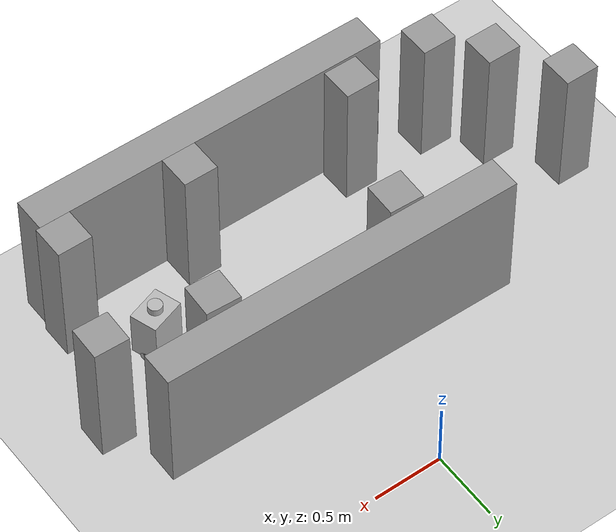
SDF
<sdf version="1.7">
 <world name="default">
  <model name="ground_plane">
   <static>1</static>
   <link name="link">
    <collision name="collision">
     <geometry><plane><normal>0 0 1</normal><size>100 100</size></plane></geometry>
     <surface><friction><ode><mu>100</mu><mu2>50</mu2></ode></friction></surface>
    </collision>
    <visual name="visual">
     <cast_shadows>0</cast_shadows>
     <geometry><plane><normal>0 0 1</normal><size>100 100</size></plane></geometry>
     <material>
      <script><uri>file://media/materials/scripts/gazebo.material</uri><name>Gazebo/Grey</name></script>
     </material>
    </visual>
   </link>
  </model>
  <model name="sam_bot">
   <link name="base_footprint">
    <inertial>
     <pose>-0 0 0.210493 1.5708 -0 1.5708</pose>
     <mass>15.225</mass>
     <inertia>
      <ixx>0.213233</ixx>
      <ixy>6.0409e-35</ixy>
      <ixz>-2.83277e-19</ixz>
      <iyy>0.13983</iyy>
      <iyz>-2.04792e-18</iyz>
      <izz>0.250014</izz>
     </inertia>
    </inertial>
    <collision name="base_footprint_fixed_joint_lump__base_link_collision">
     <pose>0 0 0.21 0 -0 0</pose>
     <geometry><box><size>0.2 0.265 0.35</size></box></geometry>
    </collision>
    <collision name="base_footprint_fixed_joint_lump__front_caster_collision_1">
     <pose>0.1 0 0.035 0 -0 0</pose>
     <geometry><sphere><radius>0.035</radius></sphere></geometry>
     <surface><friction><ode><mu>0.001</mu><mu2>0.001</mu2></ode></friction></surface>
    </collision>
    <collision name="base_footprint_fixed_joint_lump__back_caster_collision_2">
     <pose>-0.1 0 0.035 0 -0 0</pose>
     <geometry><sphere><radius>0.035</radius></sphere></geometry>
     <surface><friction><ode><mu>0.001</mu><mu2>0.001</mu2></ode></friction></surface>
    </collision>
    <collision name="base_footprint_fixed_joint_lump__lidar_link_collision_3">
     <pose>0 0 0.41 0 -0 0</pose>
     <geometry><cylinder><length>0.055</length><radius>0.0508</radius></cylinder></geometry>
    </collision>
    <visual name="base_footprint_fixed_joint_lump__base_link_visual">
     <pose>0 0 0.21 0 -0 0</pose>
     <geometry><box><size>0.2 0.265 0.35</size></box></geometry>
    </visual>
    <visual name="base_footprint_fixed_joint_lump__front_caster_visual_1">
     <pose>0.1 0 0.035 0 -0 0</pose>
     <geometry><sphere><radius>0.035</radius></sphere></geometry>
    </visual>
    <visual name="base_footprint_fixed_joint_lump__back_caster_visual_2">
     <pose>-0.1 0 0.035 0 -0 0</pose>
     <geometry><sphere><radius>0.035</radius></sphere></geometry>
    </visual>
    <visual name="base_footprint_fixed_joint_lump__lidar_link_visual_3">
     <pose>0 0 0.41 0 -0 0</pose>
     <geometry><cylinder><length>0.055</length><radius>0.0508</radius></cylinder></geometry>
    </visual>
    <sensor name="lidar" type="ray">
     <always_on>1</always_on>
     <visualize>1</visualize>
     <update_rate>5</update_rate>
     <ray>
      <scan>
       <horizontal>
        <samples>360</samples>
        <resolution>1</resolution>
        <min_angle>0</min_angle>
        <max_angle>6.28</max_angle>
       </horizontal>
       <vertical><samples>1</samples><min_angle>0</min_angle><max_angle>0</max_angle></vertical>
      </scan>
      <range><min>0.12</min><max>3.5</max><resolution>0.015</resolution></range>
      <noise><type>gaussian</type><mean>0</mean><stddev>0.01</stddev></noise>
     </ray>
     <plugin name="scan" filename="libgazebo_ros_ray_sensor.so">
      <ros><remapping>~/out:=scan</remapping></ros>
      <output_type>sensor_msgs/LaserScan</output_type>
      <frame_name>lidar_link</frame_name>
     </plugin>
     <pose>0 0 0.41 0 -0 0</pose>
    </sensor>
   </link>
   <joint name="drivewhl_l_joint" type="revolute">
    <pose relative_to="base_footprint">0 0.12 0.035 0 -0 0</pose>
    <parent>base_footprint</parent>
    <child>drivewhl_l_link</child>
    <axis>
     <xyz>0 1 0</xyz>
     <limit><lower>-1e+16</lower><upper>1e+16</upper></limit>
     <dynamics><spring_reference>0</spring_reference><spring_stiffness>0</spring_stiffness></dynamics>
    </axis>
   </joint>
   <link name="drivewhl_l_link">
    <pose relative_to="drivewhl_l_joint">0 0 0 0 -0 0</pose>
    <inertial>
     <pose>0 0 0 1.5708 -0 0</pose>
     <mass>0.5</mass>
     <inertia>
      <ixx>0.000179167</ixx>
      <ixy>0</ixy>
      <ixz>0</ixz>
      <iyy>0.000179167</iyy>
      <iyz>0</iyz>
      <izz>0.00030625</izz>
     </inertia>
    </inertial>
    <collision name="drivewhl_l_link_collision">
     <pose>0 0 0 1.5708 -0 0</pose>
     <geometry><cylinder><length>0.025</length><radius>0.035</radius></cylinder></geometry>
    </collision>
    <visual name="drivewhl_l_link_visual">
     <pose>0 0 0 1.5708 -0 0</pose>
     <geometry><cylinder><length>0.025</length><radius>0.035</radius></cylinder></geometry>
    </visual>
   </link>
   <joint name="drivewhl_r_joint" type="revolute">
    <pose relative_to="base_footprint">0 -0.12 0.035 0 -0 0</pose>
    <parent>base_footprint</parent>
    <child>drivewhl_r_link</child>
    <axis>
     <xyz>0 1 0</xyz>
     <limit><lower>-1e+16</lower><upper>1e+16</upper></limit>
     <dynamics><spring_reference>0</spring_reference><spring_stiffness>0</spring_stiffness></dynamics>
    </axis>
   </joint>
   <link name="drivewhl_r_link">
    <pose relative_to="drivewhl_r_joint">0 0 0 0 -0 0</pose>
    <inertial>
     <pose>0 0 0 1.5708 -0 0</pose>
     <mass>0.5</mass>
     <inertia>
      <ixx>0.000179167</ixx>
      <ixy>0</ixy>
      <ixz>0</ixz>
      <iyy>0.000179167</iyy>
      <iyz>0</iyz>
      <izz>0.00030625</izz>
     </inertia>
    </inertial>
    <collision name="drivewhl_r_link_collision">
     <pose>0 0 0 1.5708 -0 0</pose>
     <geometry><cylinder><length>0.025</length><radius>0.035</radius></cylinder></geometry>
    </collision>
    <visual name="drivewhl_r_link_visual">
     <pose>0 0 0 1.5708 -0 0</pose>
     <geometry><cylinder><length>0.025</length><radius>0.035</radius></cylinder></geometry>
    </visual>
   </link>
   <static>0</static>
   <plugin name="gazebo_ros2_control" filename="libgazebo_ros2_control.so">
    <robot_param>robot_description</robot_param>
    <robot_param_node>robot_state_publisher</robot_param_node>
    <robotNamespace>/</robotNamespace>
    <parameters>/home/jeja/ros2_ws/install/sam_bot_description/share/sam_bot_description/config/my_controller.yaml</parameters>
    <robotNamespace>/</robotNamespace>
    <robotSimType>gazebo_ros_control/DefaultRobotHWSim</robotSimType>
    <legacyModeNS>1</legacyModeNS>
   </plugin>
   <pose>0.903291 -1.76035 -0 0 -0 1.89102</pose>
  </model>
  <model name="unit_box_clone_0_clone_3_clone_1_clone">
   <link name="link">
    <inertial>
     <mass>10.5367</mass>
     <inertia><ixx>0.93294</ixx><ixy>0</ixy><ixz>0</ixz><iyy>6.97085</iyy><iyz>0</iyz><izz>6.14767</izz></inertia>
    </inertial>
    <pose>-0.617061 0 -0 0 -0 0</pose>
    <visual name="visual">
     <geometry><box><size>2.63418 0.25 1</size></box></geometry>
     <material>
      <script><name>Gazebo/Grey</name><uri>file://media/materials/scripts/gazebo.material</uri></script>
      <shader type="pixel"><normal_map>__default__</normal_map></shader>
      <ambient>0.3 0.3 0.3 1</ambient>
      <diffuse>0.7 0.7 0.7 1</diffuse>
      <specular>0.01 0.01 0.01 1</specular>
      <emissive>0 0 0 1</emissive>
     </material>
    </visual>
    <collision name="collision">
     <geometry><box><size>2.63418 0.25 1</size></box></geometry>
     <surface>
      <friction>
       <ode><mu>1</mu><mu2>1</mu2><fdir1>0 0 0</fdir1><slip1>0</slip1><slip2>0</slip2></ode>
       <torsional>
        <coefficient>1</coefficient>
        <patch_radius>0</patch_radius>
        <surface_radius>0</surface_radius>
        <use_patch_radius>1</use_patch_radius>
        <ode><slip>0</slip></ode>
       </torsional>
      </friction>
      <bounce><restitution_coefficient>0</restitution_coefficient><threshold>1e+06</threshold></bounce>
      <contact>
       <collide_without_contact>0</collide_without_contact>
       <collide_without_contact_bitmask>1</collide_without_contact_bitmask>
       <collide_bitmask>1</collide_bitmask>
       <ode>
        <soft_cfm>0</soft_cfm>
        <soft_erp>0.2</soft_erp>
        <kp>1e+13</kp>
        <kd>1</kd>
        <max_vel>0.01</max_vel>
        <min_depth>0</min_depth>
       </ode>
       <bullet>
        <split_impulse>1</split_impulse>
        <split_impulse_penetration_threshold>-0.01</split_impulse_penetration_threshold>
        <soft_cfm>0</soft_cfm>
        <soft_erp>0.2</soft_erp>
        <kp>1e+13</kp>
        <kd>1</kd>
       </bullet>
      </contact>
     </surface>
    </collision>
   </link>
   <static>0</static>
   <pose>0.66625 -2.42578 0.5 0 -0 -0.001715</pose>
  </model>
  <model name="unit_box_clone_0_clone_3_clone_1_clone_clone">
   <link name="link">
    <inertial>
     <mass>10.5367</mass>
     <inertia><ixx>0.93294</ixx><ixy>0</ixy><ixz>0</ixz><iyy>6.97085</iyy><iyz>0</iyz><izz>6.14767</izz></inertia>
    </inertial>
    <pose>-0.617061 0 -0 0 -0 0</pose>
    <visual name="visual">
     <geometry><box><size>2.63418 0.25 1</size></box></geometry>
     <material>
      <script><name>Gazebo/Grey</name><uri>file://media/materials/scripts/gazebo.material</uri></script>
      <shader type="pixel"><normal_map>__default__</normal_map></shader>
      <ambient>0.3 0.3 0.3 1</ambient>
      <diffuse>0.7 0.7 0.7 1</diffuse>
      <specular>0.01 0.01 0.01 1</specular>
      <emissive>0 0 0 1</emissive>
     </material>
    </visual>
    <collision name="collision">
     <geometry><box><size>2.63418 0.25 1</size></box></geometry>
     <surface>
      <friction>
       <ode><mu>1</mu><mu2>1</mu2><fdir1>0 0 0</fdir1><slip1>0</slip1><slip2>0</slip2></ode>
       <torsional>
        <coefficient>1</coefficient>
        <patch_radius>0</patch_radius>
        <surface_radius>0</surface_radius>
        <use_patch_radius>1</use_patch_radius>
        <ode><slip>0</slip></ode>
       </torsional>
      </friction>
      <bounce><restitution_coefficient>0</restitution_coefficient><threshold>1e+06</threshold></bounce>
      <contact>
       <collide_without_contact>0</collide_without_contact>
       <collide_without_contact_bitmask>1</collide_without_contact_bitmask>
       <collide_bitmask>1</collide_bitmask>
       <ode>
        <soft_cfm>0</soft_cfm>
        <soft_erp>0.2</soft_erp>
        <kp>1e+13</kp>
        <kd>1</kd>
        <max_vel>0.01</max_vel>
        <min_depth>0</min_depth>
       </ode>
       <bullet>
        <split_impulse>1</split_impulse>
        <split_impulse_penetration_threshold>-0.01</split_impulse_penetration_threshold>
        <soft_cfm>0</soft_cfm>
        <soft_erp>0.2</soft_erp>
        <kp>1e+13</kp>
        <kd>1</kd>
       </bullet>
      </contact>
     </surface>
    </collision>
   </link>
   <static>0</static>
   <pose>0.714115 -0.973576 0.499999 -2e-06 -1e-06 -0.011136</pose>
  </model>
  <model name="unit_box_clone_0_clone_3_clone_0_clone">
   <link name="link">
    <inertial>
     <mass>1</mass>
     <inertia>
      <ixx>0.166667</ixx>
      <ixy>0</ixy>
      <ixz>0</ixz>
      <iyy>0.166667</iyy>
      <iyz>0</iyz>
      <izz>0.166667</izz>
     </inertia>
    </inertial>
    <pose>-0.617061 0 -0 0 -0 0</pose>
    <visual name="visual">
     <geometry><box><size>0.25 0.25 1</size></box></geometry>
     <material>
      <script><name>Gazebo/Grey</name><uri>file://media/materials/scripts/gazebo.material</uri></script>
      <shader type="pixel"><normal_map>__default__</normal_map></shader>
      <ambient>0.3 0.3 0.3 1</ambient>
      <diffuse>0.7 0.7 0.7 1</diffuse>
      <specular>0.01 0.01 0.01 1</specular>
      <emissive>0 0 0 1</emissive>
     </material>
    </visual>
    <collision name="collision">
     <geometry><box><size>0.25 0.25 1</size></box></geometry>
     <surface>
      <friction>
       <ode><mu>1</mu><mu2>1</mu2><fdir1>0 0 0</fdir1><slip1>0</slip1><slip2>0</slip2></ode>
       <torsional>
        <coefficient>1</coefficient>
        <patch_radius>0</patch_radius>
        <surface_radius>0</surface_radius>
        <use_patch_radius>1</use_patch_radius>
        <ode><slip>0</slip></ode>
       </torsional>
      </friction>
      <bounce><restitution_coefficient>0</restitution_coefficient><threshold>1e+06</threshold></bounce>
      <contact>
       <collide_without_contact>0</collide_without_contact>
       <collide_without_contact_bitmask>1</collide_without_contact_bitmask>
       <collide_bitmask>1</collide_bitmask>
       <ode>
        <soft_cfm>0</soft_cfm>
        <soft_erp>0.2</soft_erp>
        <kp>1e+13</kp>
        <kd>1</kd>
        <max_vel>0.01</max_vel>
        <min_depth>0</min_depth>
       </ode>
       <bullet>
        <split_impulse>1</split_impulse>
        <split_impulse_penetration_threshold>-0.01</split_impulse_penetration_threshold>
        <soft_cfm>0</soft_cfm>
        <soft_erp>0.2</soft_erp>
        <kp>1e+13</kp>
        <kd>1</kd>
       </bullet>
      </contact>
     </surface>
    </collision>
   </link>
   <static>0</static>
   <pose>0.941363 -2.17623 0.5 -2e-06 -1e-06 -0.00172</pose>
  </model>
  <model name="unit_box_clone_0_clone_3_clone_0_clone_0">
   <link name="link">
    <inertial>
     <mass>1</mass>
     <inertia>
      <ixx>0.166667</ixx>
      <ixy>0</ixy>
      <ixz>0</ixz>
      <iyy>0.166667</iyy>
      <iyz>0</iyz>
      <izz>0.166667</izz>
     </inertia>
    </inertial>
    <pose>-0.617061 0 -0 0 -0 0</pose>
    <visual name="visual">
     <geometry><box><size>0.25 0.25 1</size></box></geometry>
     <material>
      <script><name>Gazebo/Grey</name><uri>file://media/materials/scripts/gazebo.material</uri></script>
      <shader type="pixel"><normal_map>__default__</normal_map></shader>
      <ambient>0.3 0.3 0.3 1</ambient>
      <diffuse>0.7 0.7 0.7 1</diffuse>
      <specular>0.01 0.01 0.01 1</specular>
      <emissive>0 0 0 1</emissive>
     </material>
    </visual>
    <collision name="collision">
     <geometry><box><size>0.25 0.25 1</size></box></geometry>
     <surface>
      <friction>
       <ode><mu>1</mu><mu2>1</mu2><fdir1>0 0 0</fdir1><slip1>0</slip1><slip2>0</slip2></ode>
       <torsional>
        <coefficient>1</coefficient>
        <patch_radius>0</patch_radius>
        <surface_radius>0</surface_radius>
        <use_patch_radius>1</use_patch_radius>
        <ode><slip>0</slip></ode>
       </torsional>
      </friction>
      <bounce><restitution_coefficient>0</restitution_coefficient><threshold>1e+06</threshold></bounce>
      <contact>
       <collide_without_contact>0</collide_without_contact>
       <collide_without_contact_bitmask>1</collide_without_contact_bitmask>
       <collide_bitmask>1</collide_bitmask>
       <ode>
        <soft_cfm>0</soft_cfm>
        <soft_erp>0.2</soft_erp>
        <kp>1e+13</kp>
        <kd>1</kd>
        <max_vel>0.01</max_vel>
        <min_depth>0</min_depth>
       </ode>
       <bullet>
        <split_impulse>1</split_impulse>
        <split_impulse_penetration_threshold>-0.01</split_impulse_penetration_threshold>
        <soft_cfm>0</soft_cfm>
        <soft_erp>0.2</soft_erp>
        <kp>1e+13</kp>
        <kd>1</kd>
       </bullet>
      </contact>
     </surface>
    </collision>
   </link>
   <static>0</static>
   <pose>1.41818 -1.28711 0.499998 0 3e-06 -0.050346</pose>
  </model>
  <model name="unit_box_clone_0_clone_3_clone_0_clone_1">
   <link name="link">
    <inertial>
     <mass>1</mass>
     <inertia>
      <ixx>0.166667</ixx>
      <ixy>0</ixy>
      <ixz>0</ixz>
      <iyy>0.166667</iyy>
      <iyz>0</iyz>
      <izz>0.166667</izz>
     </inertia>
    </inertial>
    <pose>-0.617061 0 -0 0 -0 0</pose>
    <visual name="visual">
     <geometry><box><size>0.25 0.25 1</size></box></geometry>
     <material>
      <script><name>Gazebo/Grey</name><uri>file://media/materials/scripts/gazebo.material</uri></script>
      <shader type="pixel"><normal_map>__default__</normal_map></shader>
      <ambient>0.3 0.3 0.3 1</ambient>
      <diffuse>0.7 0.7 0.7 1</diffuse>
      <specular>0.01 0.01 0.01 1</specular>
      <emissive>0 0 0 1</emissive>
     </material>
    </visual>
    <collision name="collision">
     <geometry><box><size>0.25 0.25 1</size></box></geometry>
     <surface>
      <friction>
       <ode><mu>1</mu><mu2>1</mu2><fdir1>0 0 0</fdir1><slip1>0</slip1><slip2>0</slip2></ode>
       <torsional>
        <coefficient>1</coefficient>
        <patch_radius>0</patch_radius>
        <surface_radius>0</surface_radius>
        <use_patch_radius>1</use_patch_radius>
        <ode><slip>0</slip></ode>
       </torsional>
      </friction>
      <bounce><restitution_coefficient>0</restitution_coefficient><threshold>1e+06</threshold></bounce>
      <contact>
       <collide_without_contact>0</collide_without_contact>
       <collide_without_contact_bitmask>1</collide_without_contact_bitmask>
       <collide_bitmask>1</collide_bitmask>
       <ode>
        <soft_cfm>0</soft_cfm>
        <soft_erp>0.2</soft_erp>
        <kp>1e+13</kp>
        <kd>1</kd>
        <max_vel>0.01</max_vel>
        <min_depth>0</min_depth>
       </ode>
       <bullet>
        <split_impulse>1</split_impulse>
        <split_impulse_penetration_threshold>-0.01</split_impulse_penetration_threshold>
        <soft_cfm>0</soft_cfm>
        <soft_erp>0.2</soft_erp>
        <kp>1e+13</kp>
        <kd>1</kd>
       </bullet>
      </contact>
     </surface>
    </collision>
   </link>
   <static>0</static>
   <pose>0.043538 -1.25021 0.499999 -3e-06 1e-06 -0.037455</pose>
  </model>
  <model name="unit_box_clone_0_clone_3_clone_0_clone_2">
   <link name="link">
    <inertial>
     <mass>1</mass>
     <inertia>
      <ixx>0.166667</ixx>
      <ixy>0</ixy>
      <ixz>0</ixz>
      <iyy>0.166667</iyy>
      <iyz>0</iyz>
      <izz>0.166667</izz>
     </inertia>
    </inertial>
    <pose>-0.617061 0 -0 0 -0 0</pose>
    <visual name="visual">
     <geometry><box><size>0.25 0.25 1</size></box></geometry>
     <material>
      <script><name>Gazebo/Grey</name><uri>file://media/materials/scripts/gazebo.material</uri></script>
      <shader type="pixel"><normal_map>__default__</normal_map></shader>
      <ambient>0.3 0.3 0.3 1</ambient>
      <diffuse>0.7 0.7 0.7 1</diffuse>
      <specular>0.01 0.01 0.01 1</specular>
      <emissive>0 0 0 1</emissive>
     </material>
    </visual>
    <collision name="collision">
     <geometry><box><size>0.25 0.25 1</size></box></geometry>
     <surface>
      <friction>
       <ode><mu>1</mu><mu2>1</mu2><fdir1>0 0 0</fdir1><slip1>0</slip1><slip2>0</slip2></ode>
       <torsional>
        <coefficient>1</coefficient>
        <patch_radius>0</patch_radius>
        <surface_radius>0</surface_radius>
        <use_patch_radius>1</use_patch_radius>
        <ode><slip>0</slip></ode>
       </torsional>
      </friction>
      <bounce><restitution_coefficient>0</restitution_coefficient><threshold>1e+06</threshold></bounce>
      <contact>
       <collide_without_contact>0</collide_without_contact>
       <collide_without_contact_bitmask>1</collide_without_contact_bitmask>
       <collide_bitmask>1</collide_bitmask>
       <ode>
        <soft_cfm>0</soft_cfm>
        <soft_erp>0.2</soft_erp>
        <kp>1e+13</kp>
        <kd>1</kd>
        <max_vel>0.01</max_vel>
        <min_depth>0</min_depth>
       </ode>
       <bullet>
        <split_impulse>1</split_impulse>
        <split_impulse_penetration_threshold>-0.01</split_impulse_penetration_threshold>
        <soft_cfm>0</soft_cfm>
        <soft_erp>0.2</soft_erp>
        <kp>1e+13</kp>
        <kd>1</kd>
       </bullet>
      </contact>
     </surface>
    </collision>
   </link>
   <static>0</static>
   <pose>-0.312912 -2.15662 0.500001 1e-06 -2e-06 1.1e-05</pose>
  </model>
  <model name="unit_box_clone_0_clone_3_clone_0_clone_3">
   <link name="link">
    <inertial>
     <mass>1</mass>
     <inertia>
      <ixx>0.166667</ixx>
      <ixy>0</ixy>
      <ixz>0</ixz>
      <iyy>0.166667</iyy>
      <iyz>0</iyz>
      <izz>0.166667</izz>
     </inertia>
    </inertial>
    <pose>-0.617061 0 -0 0 -0 0</pose>
    <visual name="visual">
     <geometry><box><size>0.25 0.25 1</size></box></geometry>
     <material>
      <script><name>Gazebo/Grey</name><uri>file://media/materials/scripts/gazebo.material</uri></script>
      <shader type="pixel"><normal_map>__default__</normal_map></shader>
      <ambient>0.3 0.3 0.3 1</ambient>
      <diffuse>0.7 0.7 0.7 1</diffuse>
      <specular>0.01 0.01 0.01 1</specular>
      <emissive>0 0 0 1</emissive>
     </material>
    </visual>
    <collision name="collision">
     <geometry><box><size>0.25 0.25 1</size></box></geometry>
     <surface>
      <friction>
       <ode><mu>1</mu><mu2>1</mu2><fdir1>0 0 0</fdir1><slip1>0</slip1><slip2>0</slip2></ode>
       <torsional>
        <coefficient>1</coefficient>
        <patch_radius>0</patch_radius>
        <surface_radius>0</surface_radius>
        <use_patch_radius>1</use_patch_radius>
        <ode><slip>0</slip></ode>
       </torsional>
      </friction>
      <bounce><restitution_coefficient>0</restitution_coefficient><threshold>1e+06</threshold></bounce>
      <contact>
       <collide_without_contact>0</collide_without_contact>
       <collide_without_contact_bitmask>1</collide_without_contact_bitmask>
       <collide_bitmask>1</collide_bitmask>
       <ode>
        <soft_cfm>0</soft_cfm>
        <soft_erp>0.2</soft_erp>
        <kp>1e+13</kp>
        <kd>1</kd>
        <max_vel>0.01</max_vel>
        <min_depth>0</min_depth>
       </ode>
       <bullet>
        <split_impulse>1</split_impulse>
        <split_impulse_penetration_threshold>-0.01</split_impulse_penetration_threshold>
        <soft_cfm>0</soft_cfm>
        <soft_erp>0.2</soft_erp>
        <kp>1e+13</kp>
        <kd>1</kd>
       </bullet>
      </contact>
     </surface>
    </collision>
   </link>
   <static>0</static>
   <pose>1.88746 -2.1778 0.500001 1e-06 -3e-06 -0.001703</pose>
  </model>
  <model name="unit_box_clone_0_clone_3_clone_0_clone_4">
   <link name="link">
    <inertial>
     <mass>1</mass>
     <inertia>
      <ixx>0.166667</ixx>
      <ixy>0</ixy>
      <ixz>0</ixz>
      <iyy>0.166667</iyy>
      <iyz>0</iyz>
      <izz>0.166667</izz>
     </inertia>
    </inertial>
    <pose>-0.617061 0 -0 0 -0 0</pose>
    <visual name="visual">
     <geometry><box><size>0.25 0.25 1</size></box></geometry>
     <material>
      <script><name>Gazebo/Grey</name><uri>file://media/materials/scripts/gazebo.material</uri></script>
      <shader type="pixel"><normal_map>__default__</normal_map></shader>
      <ambient>0.3 0.3 0.3 1</ambient>
      <diffuse>0.7 0.7 0.7 1</diffuse>
      <specular>0.01 0.01 0.01 1</specular>
      <emissive>0 0 0 1</emissive>
     </material>
    </visual>
    <collision name="collision">
     <geometry><box><size>0.25 0.25 1</size></box></geometry>
     <surface>
      <friction>
       <ode><mu>1</mu><mu2>1</mu2><fdir1>0 0 0</fdir1><slip1>0</slip1><slip2>0</slip2></ode>
       <torsional>
        <coefficient>1</coefficient>
        <patch_radius>0</patch_radius>
        <surface_radius>0</surface_radius>
        <use_patch_radius>1</use_patch_radius>
        <ode><slip>0</slip></ode>
       </torsional>
      </friction>
      <bounce><restitution_coefficient>0</restitution_coefficient><threshold>1e+06</threshold></bounce>
      <contact>
       <collide_without_contact>0</collide_without_contact>
       <collide_without_contact_bitmask>1</collide_without_contact_bitmask>
       <collide_bitmask>1</collide_bitmask>
       <ode>
        <soft_cfm>0</soft_cfm>
        <soft_erp>0.2</soft_erp>
        <kp>1e+13</kp>
        <kd>1</kd>
        <max_vel>0.01</max_vel>
        <min_depth>0</min_depth>
       </ode>
       <bullet>
        <split_impulse>1</split_impulse>
        <split_impulse_penetration_threshold>-0.01</split_impulse_penetration_threshold>
        <soft_cfm>0</soft_cfm>
        <soft_erp>0.2</soft_erp>
        <kp>1e+13</kp>
        <kd>1</kd>
       </bullet>
      </contact>
     </surface>
    </collision>
   </link>
   <static>0</static>
   <pose>2.14676 -1.41181 0.499999 3e-06 -0 -0.029964</pose>
  </model>
  <model name="unit_box_clone_0_clone_3_clone_0_clone_5">
   <link name="link">
    <inertial>
     <mass>1</mass>
     <inertia>
      <ixx>0.166667</ixx>
      <ixy>0</ixy>
      <ixz>0</ixz>
      <iyy>0.166667</iyy>
      <iyz>0</iyz>
      <izz>0.166667</izz>
     </inertia>
    </inertial>
    <pose>-0.617061 0 -0 0 -0 0</pose>
    <visual name="visual">
     <geometry><box><size>0.25 0.25 1</size></box></geometry>
     <material>
      <script><name>Gazebo/Grey</name><uri>file://media/materials/scripts/gazebo.material</uri></script>
      <shader type="pixel"><normal_map>__default__</normal_map></shader>
      <ambient>0.3 0.3 0.3 1</ambient>
      <diffuse>0.7 0.7 0.7 1</diffuse>
      <specular>0.01 0.01 0.01 1</specular>
      <emissive>0 0 0 1</emissive>
     </material>
    </visual>
    <collision name="collision">
     <geometry><box><size>0.25 0.25 1</size></box></geometry>
     <surface>
      <friction>
       <ode><mu>1</mu><mu2>1</mu2><fdir1>0 0 0</fdir1><slip1>0</slip1><slip2>0</slip2></ode>
       <torsional>
        <coefficient>1</coefficient>
        <patch_radius>0</patch_radius>
        <surface_radius>0</surface_radius>
        <use_patch_radius>1</use_patch_radius>
        <ode><slip>0</slip></ode>
       </torsional>
      </friction>
      <bounce><restitution_coefficient>0</restitution_coefficient><threshold>1e+06</threshold></bounce>
      <contact>
       <collide_without_contact>0</collide_without_contact>
       <collide_without_contact_bitmask>1</collide_without_contact_bitmask>
       <collide_bitmask>1</collide_bitmask>
       <ode>
        <soft_cfm>0</soft_cfm>
        <soft_erp>0.2</soft_erp>
        <kp>1e+13</kp>
        <kd>1</kd>
        <max_vel>0.01</max_vel>
        <min_depth>0</min_depth>
       </ode>
       <bullet>
        <split_impulse>1</split_impulse>
        <split_impulse_penetration_threshold>-0.01</split_impulse_penetration_threshold>
        <soft_cfm>0</soft_cfm>
        <soft_erp>0.2</soft_erp>
        <kp>1e+13</kp>
        <kd>1</kd>
       </bullet>
      </contact>
     </surface>
    </collision>
   </link>
   <static>0</static>
   <pose>-0.936857 -2.1594 0.499999 2e-06 2e-06 2.2e-05</pose>
  </model>
  <model name="unit_box_clone_0_clone_3_clone_0_clone_6">
   <link name="link">
    <inertial>
     <mass>1</mass>
     <inertia>
      <ixx>0.166667</ixx>
      <ixy>0</ixy>
      <ixz>0</ixz>
      <iyy>0.166667</iyy>
      <iyz>0</iyz>
      <izz>0.166667</izz>
     </inertia>
    </inertial>
    <pose>-0.617061 0 -0 0 -0 0</pose>
    <visual name="visual">
     <geometry><box><size>0.25 0.25 1</size></box></geometry>
     <material>
      <script><name>Gazebo/Grey</name><uri>file://media/materials/scripts/gazebo.material</uri></script>
      <shader type="pixel"><normal_map>__default__</normal_map></shader>
      <ambient>0.3 0.3 0.3 1</ambient>
      <diffuse>0.7 0.7 0.7 1</diffuse>
      <specular>0.01 0.01 0.01 1</specular>
      <emissive>0 0 0 1</emissive>
     </material>
    </visual>
    <collision name="collision">
     <geometry><box><size>0.25 0.25 1</size></box></geometry>
     <surface>
      <friction>
       <ode><mu>1</mu><mu2>1</mu2><fdir1>0 0 0</fdir1><slip1>0</slip1><slip2>0</slip2></ode>
       <torsional>
        <coefficient>1</coefficient>
        <patch_radius>0</patch_radius>
        <surface_radius>0</surface_radius>
        <use_patch_radius>1</use_patch_radius>
        <ode><slip>0</slip></ode>
       </torsional>
      </friction>
      <bounce><restitution_coefficient>0</restitution_coefficient><threshold>1e+06</threshold></bounce>
      <contact>
       <collide_without_contact>0</collide_without_contact>
       <collide_without_contact_bitmask>1</collide_without_contact_bitmask>
       <collide_bitmask>1</collide_bitmask>
       <ode>
        <soft_cfm>0</soft_cfm>
        <soft_erp>0.2</soft_erp>
        <kp>1e+13</kp>
        <kd>1</kd>
        <max_vel>0.01</max_vel>
        <min_depth>0</min_depth>
       </ode>
       <bullet>
        <split_impulse>1</split_impulse>
        <split_impulse_penetration_threshold>-0.01</split_impulse_penetration_threshold>
        <soft_cfm>0</soft_cfm>
        <soft_erp>0.2</soft_erp>
        <kp>1e+13</kp>
        <kd>1</kd>
       </bullet>
      </contact>
     </surface>
    </collision>
   </link>
   <static>0</static>
   <pose>-1.21826 -1.84404 0.499999 2e-06 1e-06 1.7e-05</pose>
  </model>
  <model name="unit_box_clone_0_clone_3_clone_0_clone_7">
   <link name="link">
    <inertial>
     <mass>1</mass>
     <inertia>
      <ixx>0.166667</ixx>
      <ixy>0</ixy>
      <ixz>0</ixz>
      <iyy>0.166667</iyy>
      <iyz>0</iyz>
      <izz>0.166667</izz>
     </inertia>
    </inertial>
    <pose>-0.617061 0 -0 0 -0 0</pose>
    <visual name="visual">
     <geometry><box><size>0.25 0.25 1</size></box></geometry>
     <material>
      <script><name>Gazebo/Grey</name><uri>file://media/materials/scripts/gazebo.material</uri></script>
      <shader type="pixel"><normal_map>__default__</normal_map></shader>
      <ambient>0.3 0.3 0.3 1</ambient>
      <diffuse>0.7 0.7 0.7 1</diffuse>
      <specular>0.01 0.01 0.01 1</specular>
      <emissive>0 0 0 1</emissive>
     </material>
    </visual>
    <collision name="collision">
     <geometry><box><size>0.25 0.25 1</size></box></geometry>
     <surface>
      <friction>
       <ode><mu>1</mu><mu2>1</mu2><fdir1>0 0 0</fdir1><slip1>0</slip1><slip2>0</slip2></ode>
       <torsional>
        <coefficient>1</coefficient>
        <patch_radius>0</patch_radius>
        <surface_radius>0</surface_radius>
        <use_patch_radius>1</use_patch_radius>
        <ode><slip>0</slip></ode>
       </torsional>
      </friction>
      <bounce><restitution_coefficient>0</restitution_coefficient><threshold>1e+06</threshold></bounce>
      <contact>
       <collide_without_contact>0</collide_without_contact>
       <collide_without_contact_bitmask>1</collide_without_contact_bitmask>
       <collide_bitmask>1</collide_bitmask>
       <ode>
        <soft_cfm>0</soft_cfm>
        <soft_erp>0.2</soft_erp>
        <kp>1e+13</kp>
        <kd>1</kd>
        <max_vel>0.01</max_vel>
        <min_depth>0</min_depth>
       </ode>
       <bullet>
        <split_impulse>1</split_impulse>
        <split_impulse_penetration_threshold>-0.01</split_impulse_penetration_threshold>
        <soft_cfm>0</soft_cfm>
        <soft_erp>0.2</soft_erp>
        <kp>1e+13</kp>
        <kd>1</kd>
       </bullet>
      </contact>
     </surface>
    </collision>
   </link>
   <static>0</static>
   <pose>-1.50889 -1.40789 0.499999 3e-06 1e-06 8e-06</pose>
  </model>
 </world>
</sdf>
